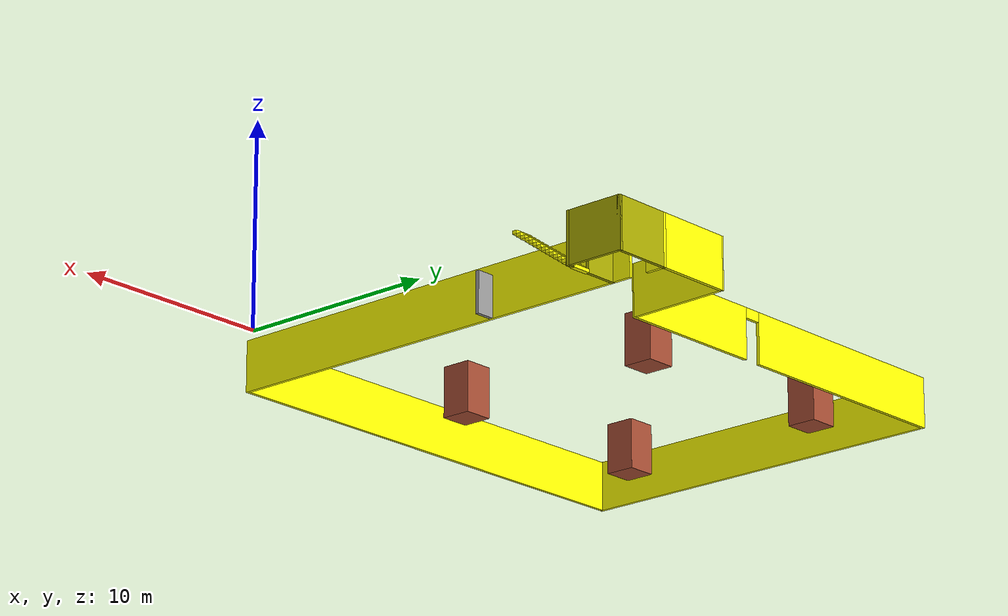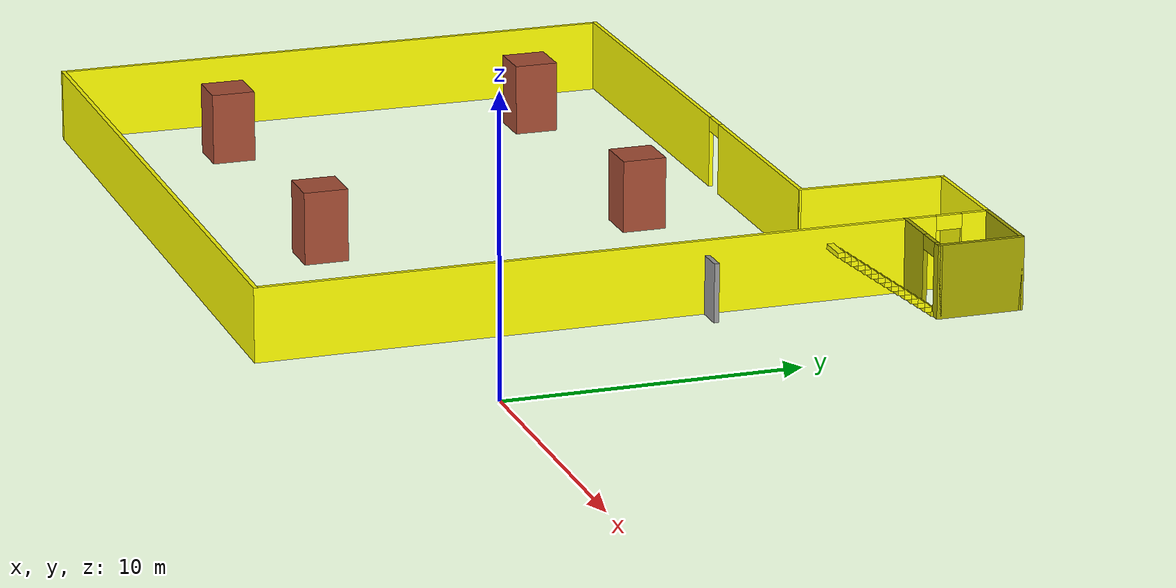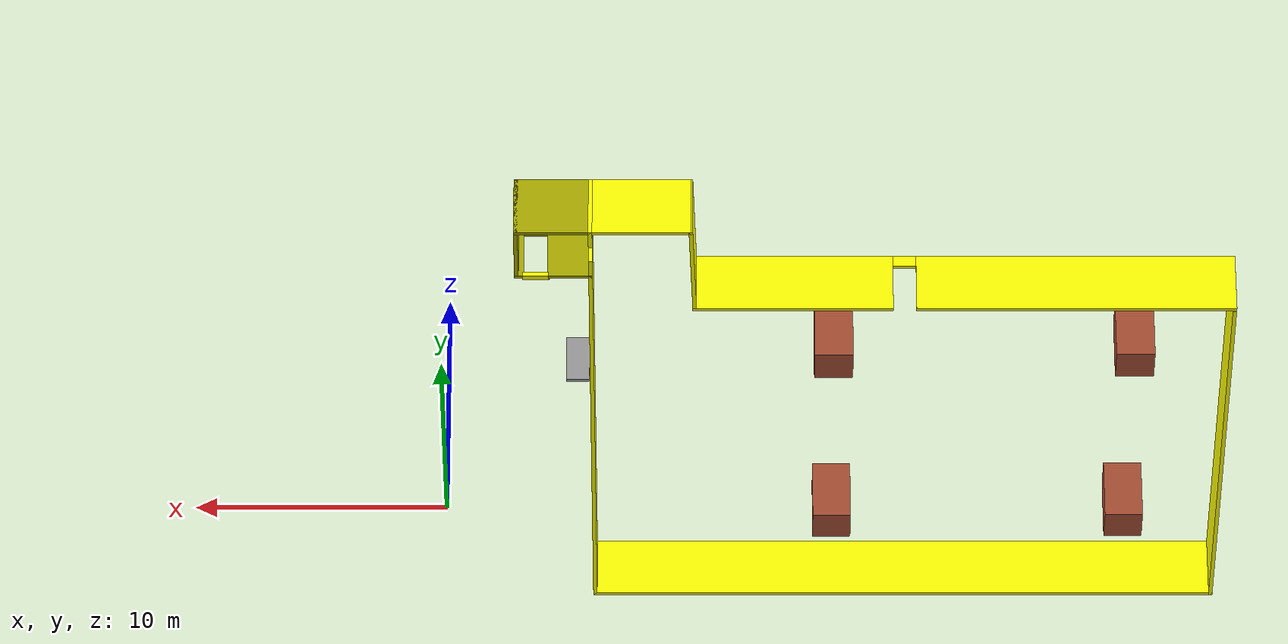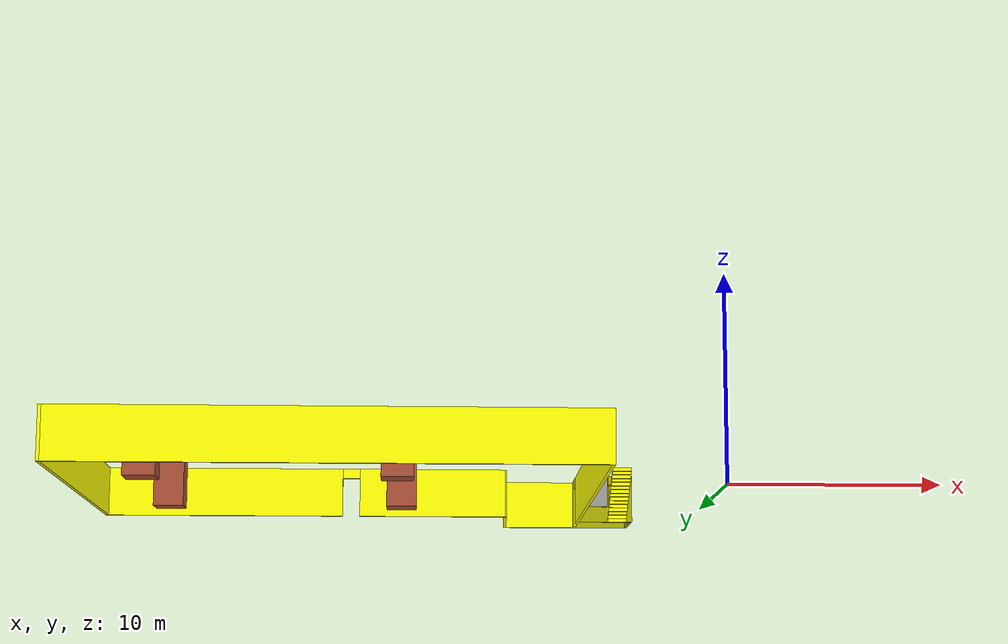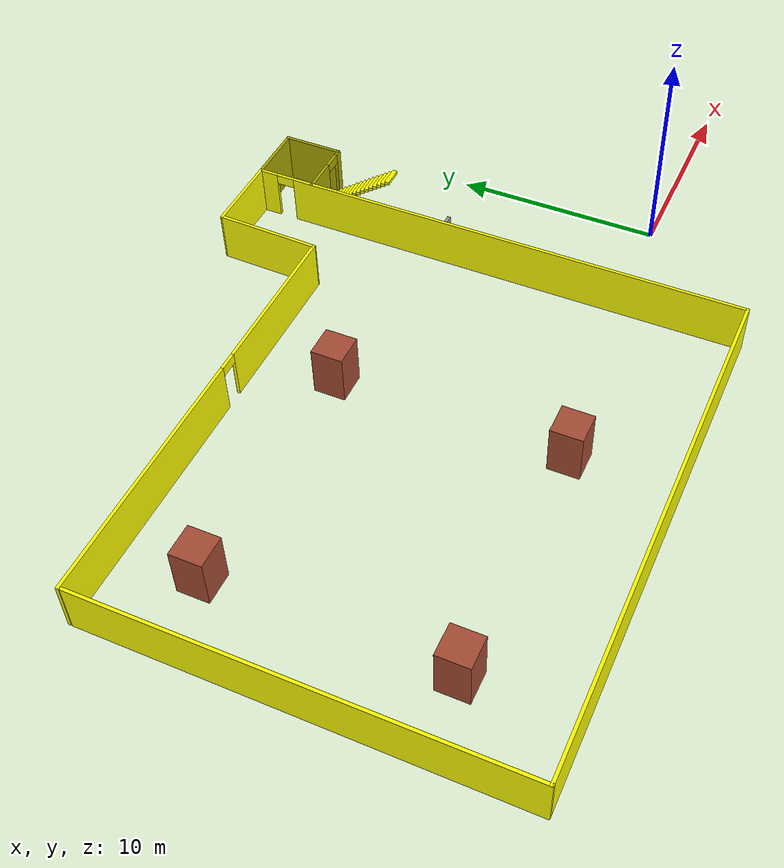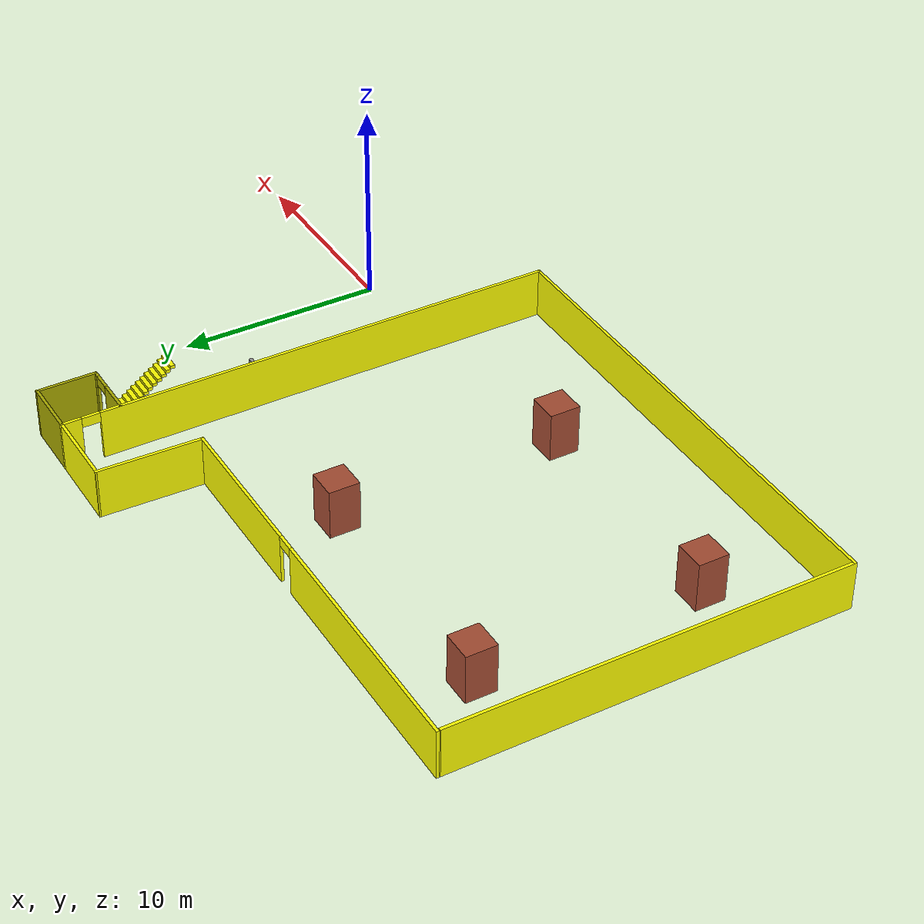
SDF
<?xml version='1.0'?>
<sdf version='1.6'>
  <model name='basement_updated'>
    <pose frame=''>-16.845 6.24811 0 0 -0 0</pose>
    <link name='Door_3'>
      <collision name='Door_3_Collision'>
        <geometry>
          <box>
            <size>0.9 0.17 2</size>
          </box>
        </geometry>
        <pose frame=''>0 0 1 0 -0 0</pose>
      </collision>
      <visual name='Door_3_Visual'>
        <pose frame=''>0 0 1 0 -0 0</pose>
        <geometry>
          <box>
            <size>0.9 0.17 2</size>
          </box>
        </geometry>
        <material>
          <script>
            <uri>file://media/materials/scripts/gazebo.material</uri>
            <name>Gazebo/Grey</name>
          </script>
        </material>
      </visual>
      <pose frame=''>11.5491 2.65287 0 0 -0 0</pose>
    </link>
    <link name='Stairs_0'>
      <visual name='Stairs_0_Visual_0'>
        <pose frame=''>13.1146 9.55196 0.083333 0 -0 0</pose>
        <geometry>
          <box>
            <size>1 0.233333 0.166667</size>
          </box>
        </geometry>
        <material>
          <script>
            <uri>file://media/materials/scripts/gazebo.material</uri>
            <name>Gazebo/Grey</name>
          </script>
          <ambient>1 1 0 1</ambient>
        </material>
      </visual>
      <collision name='Stairs_0_Collision_0'>
        <geometry>
          <box>
            <size>1 0.233333 0.166667</size>
          </box>
        </geometry>
        <pose frame=''>13.1146 9.55196 0.083333 0 -0 0</pose>
      </collision>
      <visual name='Stairs_0_Visual_1'>
        <pose frame=''>13.1146 9.31863 0.25 0 -0 0</pose>
        <geometry>
          <box>
            <size>1 0.233333 0.166667</size>
          </box>
        </geometry>
        <material>
          <script>
            <uri>file://media/materials/scripts/gazebo.material</uri>
            <name>Gazebo/Grey</name>
          </script>
          <ambient>1 1 0 1</ambient>
        </material>
      </visual>
      <collision name='Stairs_0_Collision_1'>
        <geometry>
          <box>
            <size>1 0.233333 0.166667</size>
          </box>
        </geometry>
        <pose frame=''>13.1146 9.31863 0.25 0 -0 0</pose>
      </collision>
      <visual name='Stairs_0_Visual_2'>
        <pose frame=''>13.1146 9.0853 0.416667 0 -0 0</pose>
        <geometry>
          <box>
            <size>1 0.233333 0.166667</size>
          </box>
        </geometry>
        <material>
          <script>
            <uri>file://media/materials/scripts/gazebo.material</uri>
            <name>Gazebo/Grey</name>
          </script>
          <ambient>1 1 0 1</ambient>
        </material>
      </visual>
      <collision name='Stairs_0_Collision_2'>
        <geometry>
          <box>
            <size>1 0.233333 0.166667</size>
          </box>
        </geometry>
        <pose frame=''>13.1146 9.0853 0.416667 0 -0 0</pose>
      </collision>
      <visual name='Stairs_0_Visual_3'>
        <pose frame=''>13.1146 8.85196 0.583333 0 -0 0</pose>
        <geometry>
          <box>
            <size>1 0.233333 0.166667</size>
          </box>
        </geometry>
        <material>
          <script>
            <uri>file://media/materials/scripts/gazebo.material</uri>
            <name>Gazebo/Grey</name>
          </script>
          <ambient>1 1 0 1</ambient>
        </material>
      </visual>
      <collision name='Stairs_0_Collision_3'>
        <geometry>
          <box>
            <size>1 0.233333 0.166667</size>
          </box>
        </geometry>
        <pose frame=''>13.1146 8.85196 0.583333 0 -0 0</pose>
      </collision>
      <visual name='Stairs_0_Visual_4'>
        <pose frame=''>13.1146 8.61863 0.75 0 -0 0</pose>
        <geometry>
          <box>
            <size>1 0.233333 0.166667</size>
          </box>
        </geometry>
        <material>
          <script>
            <uri>file://media/materials/scripts/gazebo.material</uri>
            <name>Gazebo/Grey</name>
          </script>
          <ambient>1 1 0 1</ambient>
        </material>
      </visual>
      <collision name='Stairs_0_Collision_4'>
        <geometry>
          <box>
            <size>1 0.233333 0.166667</size>
          </box>
        </geometry>
        <pose frame=''>13.1146 8.61863 0.75 0 -0 0</pose>
      </collision>
      <visual name='Stairs_0_Visual_5'>
        <pose frame=''>13.1146 8.3853 0.916667 0 -0 0</pose>
        <geometry>
          <box>
            <size>1 0.233333 0.166667</size>
          </box>
        </geometry>
        <material>
          <script>
            <uri>file://media/materials/scripts/gazebo.material</uri>
            <name>Gazebo/Grey</name>
          </script>
          <ambient>1 1 0 1</ambient>
        </material>
      </visual>
      <collision name='Stairs_0_Collision_5'>
        <geometry>
          <box>
            <size>1 0.233333 0.166667</size>
          </box>
        </geometry>
        <pose frame=''>13.1146 8.3853 0.916667 0 -0 0</pose>
      </collision>
      <visual name='Stairs_0_Visual_6'>
        <pose frame=''>13.1146 8.15196 1.08333 0 -0 0</pose>
        <geometry>
          <box>
            <size>1 0.233333 0.166667</size>
          </box>
        </geometry>
        <material>
          <script>
            <uri>file://media/materials/scripts/gazebo.material</uri>
            <name>Gazebo/Grey</name>
          </script>
          <ambient>1 1 0 1</ambient>
        </material>
      </visual>
      <collision name='Stairs_0_Collision_6'>
        <geometry>
          <box>
            <size>1 0.233333 0.166667</size>
          </box>
        </geometry>
        <pose frame=''>13.1146 8.15196 1.08333 0 -0 0</pose>
      </collision>
      <visual name='Stairs_0_Visual_7'>
        <pose frame=''>13.1146 7.91863 1.25 0 -0 0</pose>
        <geometry>
          <box>
            <size>1 0.233333 0.166667</size>
          </box>
        </geometry>
        <material>
          <script>
            <uri>file://media/materials/scripts/gazebo.material</uri>
            <name>Gazebo/Grey</name>
          </script>
          <ambient>1 1 0 1</ambient>
        </material>
      </visual>
      <collision name='Stairs_0_Collision_7'>
        <geometry>
          <box>
            <size>1 0.233333 0.166667</size>
          </box>
        </geometry>
        <pose frame=''>13.1146 7.91863 1.25 0 -0 0</pose>
      </collision>
      <visual name='Stairs_0_Visual_8'>
        <pose frame=''>13.1146 7.6853 1.41667 0 -0 0</pose>
        <geometry>
          <box>
            <size>1 0.233333 0.166667</size>
          </box>
        </geometry>
        <material>
          <script>
            <uri>file://media/materials/scripts/gazebo.material</uri>
            <name>Gazebo/Grey</name>
          </script>
          <ambient>1 1 0 1</ambient>
        </material>
      </visual>
      <collision name='Stairs_0_Collision_8'>
        <geometry>
          <box>
            <size>1 0.233333 0.166667</size>
          </box>
        </geometry>
        <pose frame=''>13.1146 7.6853 1.41667 0 -0 0</pose>
      </collision>
      <visual name='Stairs_0_Visual_9'>
        <pose frame=''>13.1146 7.45196 1.58333 0 -0 0</pose>
        <geometry>
          <box>
            <size>1 0.233333 0.166667</size>
          </box>
        </geometry>
        <material>
          <script>
            <uri>file://media/materials/scripts/gazebo.material</uri>
            <name>Gazebo/Grey</name>
          </script>
          <ambient>1 1 0 1</ambient>
        </material>
      </visual>
      <collision name='Stairs_0_Collision_9'>
        <geometry>
          <box>
            <size>1 0.233333 0.166667</size>
          </box>
        </geometry>
        <pose frame=''>13.1146 7.45196 1.58333 0 -0 0</pose>
      </collision>
      <visual name='Stairs_0_Visual_10'>
        <pose frame=''>13.1146 7.21863 1.75 0 -0 0</pose>
        <geometry>
          <box>
            <size>1 0.233333 0.166667</size>
          </box>
        </geometry>
        <material>
          <script>
            <uri>file://media/materials/scripts/gazebo.material</uri>
            <name>Gazebo/Grey</name>
          </script>
          <ambient>1 1 0 1</ambient>
        </material>
      </visual>
      <collision name='Stairs_0_Collision_10'>
        <geometry>
          <box>
            <size>1 0.233333 0.166667</size>
          </box>
        </geometry>
        <pose frame=''>13.1146 7.21863 1.75 0 -0 0</pose>
      </collision>
      <visual name='Stairs_0_Visual_11'>
        <pose frame=''>13.1146 6.9853 1.91667 0 -0 0</pose>
        <geometry>
          <box>
            <size>1 0.233333 0.166667</size>
          </box>
        </geometry>
        <material>
          <script>
            <uri>file://media/materials/scripts/gazebo.material</uri>
            <name>Gazebo/Grey</name>
          </script>
          <ambient>1 1 0 1</ambient>
        </material>
      </visual>
      <collision name='Stairs_0_Collision_11'>
        <geometry>
          <box>
            <size>1 0.233333 0.166667</size>
          </box>
        </geometry>
        <pose frame=''>13.1146 6.9853 1.91667 0 -0 0</pose>
      </collision>
      <visual name='Stairs_0_Visual_12'>
        <pose frame=''>13.1146 6.75196 2.08333 0 -0 0</pose>
        <geometry>
          <box>
            <size>1 0.233333 0.166667</size>
          </box>
        </geometry>
        <material>
          <script>
            <uri>file://media/materials/scripts/gazebo.material</uri>
            <name>Gazebo/Grey</name>
          </script>
          <ambient>1 1 0 1</ambient>
        </material>
      </visual>
      <collision name='Stairs_0_Collision_12'>
        <geometry>
          <box>
            <size>1 0.233333 0.166667</size>
          </box>
        </geometry>
        <pose frame=''>13.1146 6.75196 2.08333 0 -0 0</pose>
      </collision>
      <visual name='Stairs_0_Visual_13'>
        <pose frame=''>13.1146 6.51863 2.25 0 -0 0</pose>
        <geometry>
          <box>
            <size>1 0.233333 0.166667</size>
          </box>
        </geometry>
        <material>
          <script>
            <uri>file://media/materials/scripts/gazebo.material</uri>
            <name>Gazebo/Grey</name>
          </script>
          <ambient>1 1 0 1</ambient>
        </material>
      </visual>
      <collision name='Stairs_0_Collision_13'>
        <geometry>
          <box>
            <size>1 0.233333 0.166667</size>
          </box>
        </geometry>
        <pose frame=''>13.1146 6.51863 2.25 0 -0 0</pose>
      </collision>
      <visual name='Stairs_0_Visual_14'>
        <pose frame=''>13.1146 6.2853 2.41667 0 -0 0</pose>
        <geometry>
          <box>
            <size>1 0.233333 0.166667</size>
          </box>
        </geometry>
        <material>
          <script>
            <uri>file://media/materials/scripts/gazebo.material</uri>
            <name>Gazebo/Grey</name>
          </script>
          <ambient>1 1 0 1</ambient>
        </material>
      </visual>
      <collision name='Stairs_0_Collision_14'>
        <geometry>
          <box>
            <size>1 0.233333 0.166667</size>
          </box>
        </geometry>
        <pose frame=''>13.1146 6.2853 2.41667 0 -0 0</pose>
      </collision>
    </link>
    <link name='Wall_0'>
      <collision name='Wall_0_Collision'>
        <geometry>
          <box>
            <size>19.8118 0.15 2.5</size>
          </box>
        </geometry>
        <pose frame=''>0 0 1.25 0 -0 0</pose>
      </collision>
      <visual name='Wall_0_Visual'>
        <pose frame=''>0 0 1.25 0 -0 0</pose>
        <geometry>
          <box>
            <size>19.8118 0.15 2.5</size>
          </box>
        </geometry>
        <material>
          <script>
            <uri>file://media/materials/scripts/gazebo.material</uri>
            <name>Gazebo/Grey</name>
          </script>
          <ambient>1 1 0 1</ambient>
        </material>
      </visual>
      <pose frame=''>-13.85 -2.59522 0 0 0 -1.5708</pose>
    </link>
    <link name='Wall_13'>
      <pose frame=''>-3.425 7.42389 0 0 -0 0</pose>
      <visual name='Wall_13_Visual_0'>
        <pose frame=''>-4.32108 0 1.25 0 -0 0</pose>
        <geometry>
          <box>
            <size>12.3578 0.15 2.5</size>
          </box>
        </geometry>
        <material>
          <script>
            <uri>file://media/materials/scripts/gazebo.material</uri>
            <name>Gazebo/Grey</name>
          </script>
          <ambient>1 1 0 1</ambient>
        </material>
      </visual>
      <collision name='Wall_13_Collision_0'>
        <geometry>
          <box>
            <size>12.3578 0.15 2.5</size>
          </box>
        </geometry>
        <pose frame=''>-4.32108 0 1.25 0 -0 0</pose>
      </collision>
      <visual name='Wall_13_Visual_1'>
        <pose frame=''>6.62892 0 1.25 0 -0 0</pose>
        <geometry>
          <box>
            <size>7.74215 0.15 2.5</size>
          </box>
        </geometry>
        <material>
          <script>
            <uri>file://media/materials/scripts/gazebo.material</uri>
            <name>Gazebo/Grey</name>
          </script>
          <ambient>1 1 0 1</ambient>
        </material>
      </visual>
      <collision name='Wall_13_Collision_1'>
        <geometry>
          <box>
            <size>7.74215 0.15 2.5</size>
          </box>
        </geometry>
        <pose frame=''>6.62892 0 1.25 0 -0 0</pose>
      </collision>
      <visual name='Wall_13_Visual_2'>
        <pose frame=''>2.30785 0 2.25 0 -0 0</pose>
        <geometry>
          <box>
            <size>0.9 0.15 0.5</size>
          </box>
        </geometry>
        <material>
          <script>
            <uri>file://media/materials/scripts/gazebo.material</uri>
            <name>Gazebo/Grey</name>
          </script>
          <ambient>1 1 0 1</ambient>
        </material>
      </visual>
      <collision name='Wall_13_Collision_2'>
        <geometry>
          <box>
            <size>0.9 0.15 0.5</size>
          </box>
        </geometry>
        <pose frame=''>2.30785 0 2.25 0 -0 0</pose>
      </collision>
    </link>
    <link name='Wall_17'>
      <pose frame=''>11 -0.001107 0 0 -0 1.5708</pose>
      <visual name='Wall_17_Visual_0'>
        <pose frame=''>-0.949636 0 1.25 0 -0 0</pose>
        <geometry>
          <box>
            <size>23.1007 0.15 2.5</size>
          </box>
        </geometry>
        <material>
          <script>
            <uri>file://media/materials/scripts/gazebo.material</uri>
            <name>Gazebo/Grey</name>
          </script>
          <ambient>1 1 0 1</ambient>
        </material>
      </visual>
      <collision name='Wall_17_Collision_0'>
        <geometry>
          <box>
            <size>23.1007 0.15 2.5</size>
          </box>
        </geometry>
        <pose frame=''>-0.949636 0 1.25 0 -0 0</pose>
      </collision>
      <visual name='Wall_17_Visual_1'>
        <pose frame=''>12.0004 0 1.25 0 -0 0</pose>
        <geometry>
          <box>
            <size>0.999273 0.15 2.5</size>
          </box>
        </geometry>
        <material>
          <script>
            <uri>file://media/materials/scripts/gazebo.material</uri>
            <name>Gazebo/Grey</name>
          </script>
          <ambient>1 1 0 1</ambient>
        </material>
      </visual>
      <collision name='Wall_17_Collision_1'>
        <geometry>
          <box>
            <size>0.999273 0.15 2.5</size>
          </box>
        </geometry>
        <pose frame=''>12.0004 0 1.25 0 -0 0</pose>
      </collision>
      <visual name='Wall_17_Visual_2'>
        <pose frame=''>11.0507 0 2.25 0 -0 0</pose>
        <geometry>
          <box>
            <size>0.9 0.15 0.5</size>
          </box>
        </geometry>
        <material>
          <script>
            <uri>file://media/materials/scripts/gazebo.material</uri>
            <name>Gazebo/Grey</name>
          </script>
          <ambient>1 1 0 1</ambient>
        </material>
      </visual>
      <collision name='Wall_17_Collision_2'>
        <geometry>
          <box>
            <size>0.9 0.15 0.5</size>
          </box>
        </geometry>
        <pose frame=''>11.0507 0 2.25 0 -0 0</pose>
      </collision>
    </link>
    <link name='Wall_20'>
      <collision name='Wall_20_Collision'>
        <geometry>
          <box>
            <size>4 0.15 2.5</size>
          </box>
        </geometry>
        <pose frame=''>0 0 1.25 0 -0 0</pose>
      </collision>
      <visual name='Wall_20_Visual'>
        <pose frame=''>0 0 1.25 0 -0 0</pose>
        <geometry>
          <box>
            <size>4 0.15 2.5</size>
          </box>
        </geometry>
        <material>
          <script>
            <uri>file://media/materials/scripts/gazebo.material</uri>
            <name>Gazebo/Grey</name>
          </script>
          <ambient>1 1 0 1</ambient>
        </material>
      </visual>
      <pose frame=''>9.075 12.4239 0 0 -0 3.14159</pose>
    </link>
    <link name='Wall_24'>
      <collision name='Wall_24_Collision'>
        <geometry>
          <box>
            <size>5.15225 0.15 2.5</size>
          </box>
        </geometry>
        <pose frame=''>0 0 1.25 0 -0 0</pose>
      </collision>
      <visual name='Wall_24_Visual'>
        <pose frame=''>0 0 1.25 0 -0 0</pose>
        <geometry>
          <box>
            <size>5.15225 0.15 2.5</size>
          </box>
        </geometry>
        <material>
          <script>
            <uri>file://media/materials/scripts/gazebo.material</uri>
            <name>Gazebo/Grey</name>
          </script>
          <ambient>1 1 0 1</ambient>
        </material>
      </visual>
      <pose frame=''>7.075 9.92389 0 0 -0 1.5408</pose>
    </link>
    <link name='Wall_26'>
      <collision name='Wall_26_Collision'>
        <geometry>
          <box>
            <size>1.51 1.5 2.5</size>
          </box>
        </geometry>
        <pose frame=''>0 0 1.25 0 -0 0</pose>
      </collision>
      <visual name='Wall_26_Visual'>
        <pose frame=''>0 0 1.25 0 -0 0</pose>
        <geometry>
          <box>
            <size>1.51 1.5 2.5</size>
          </box>
        </geometry>
        <material>
          <script>
            <uri>file://media/materials/scripts/gazebo.material</uri>
            <name>Gazebo/Bricks</name>
          </script>
          <ambient>1 1 1 1</ambient>
        </material>
      </visual>
      <pose frame=''>-10.1524 3.68806 0 0 -0 1.5708</pose>
    </link>
    <link name='Wall_28'>
      <collision name='Wall_28_Collision'>
        <geometry>
          <box>
            <size>1.51 1.5 2.5</size>
          </box>
        </geometry>
        <pose frame=''>0 0 1.25 0 -0 0</pose>
      </collision>
      <visual name='Wall_28_Visual'>
        <pose frame=''>0 0 1.25 0 -0 0</pose>
        <geometry>
          <box>
            <size>1.51 1.5 2.5</size>
          </box>
        </geometry>
        <material>
          <script>
            <uri>file://media/materials/scripts/gazebo.material</uri>
            <name>Gazebo/Bricks</name>
          </script>
          <ambient>1 1 1 1</ambient>
        </material>
      </visual>
      <pose frame=''>1.58088 3.61659 0 0 0 -1.5708</pose>
    </link>
    <link name='Wall_30'>
      <collision name='Wall_30_Collision'>
        <geometry>
          <box>
            <size>1.51 1.5 2.5</size>
          </box>
        </geometry>
        <pose frame=''>0 0 1.25 0 -0 0</pose>
      </collision>
      <visual name='Wall_30_Visual'>
        <pose frame=''>0 0 1.25 0 -0 0</pose>
        <geometry>
          <box>
            <size>1.51 1.5 2.5</size>
          </box>
        </geometry>
        <material>
          <script>
            <uri>file://media/materials/scripts/gazebo.material</uri>
            <name>Gazebo/Bricks</name>
          </script>
          <ambient>1 1 1 1</ambient>
        </material>
      </visual>
      <pose frame=''>-10.1281 -7.46052 0 0 0 -1.5708</pose>
    </link>
    <link name='Wall_33'>
      <collision name='Wall_33_Collision'>
        <geometry>
          <box>
            <size>1.51 1.5 2.5</size>
          </box>
        </geometry>
        <pose frame=''>0 0 1.25 0 -0 0</pose>
      </collision>
      <visual name='Wall_33_Visual'>
        <pose frame=''>0 0 1.25 0 -0 0</pose>
        <geometry>
          <box>
            <size>1.51 1.5 2.5</size>
          </box>
        </geometry>
        <material>
          <script>
            <uri>file://media/materials/scripts/gazebo.material</uri>
            <name>Gazebo/Bricks</name>
          </script>
          <ambient>1 1 1 1</ambient>
        </material>
      </visual>
      <pose frame=''>1.5253 -7.5316 0 0 -0 1.5708</pose>
    </link>
    <link name='Wall_35'>
      <collision name='Wall_35_Collision'>
        <geometry>
          <box>
            <size>3 0.15 2.5</size>
          </box>
        </geometry>
        <pose frame=''>0 0 1.25 0 -0 0</pose>
      </collision>
      <visual name='Wall_35_Visual'>
        <pose frame=''>0 0 1.25 0 -0 0</pose>
        <geometry>
          <box>
            <size>3 0.15 2.5</size>
          </box>
        </geometry>
        <material>
          <script>
            <uri>file://media/materials/scripts/gazebo.material</uri>
            <name>Gazebo/Grey</name>
          </script>
          <ambient>0.666667 0.666667 0 1</ambient>
        </material>
      </visual>
      <pose frame=''>12.425 12.4239 0 0 -0 0</pose>
    </link>
    <link name='Wall_37'>
      <collision name='Wall_37_Collision'>
        <geometry>
          <box>
            <size>3 0.15 2.5</size>
          </box>
        </geometry>
        <pose frame=''>0 0 1.25 0 -0 0</pose>
      </collision>
      <visual name='Wall_37_Visual'>
        <pose frame=''>0 0 1.25 0 -0 0</pose>
        <geometry>
          <box>
            <size>3 0.15 2.5</size>
          </box>
        </geometry>
        <material>
          <script>
            <uri>file://media/materials/scripts/gazebo.material</uri>
            <name>Gazebo/Grey</name>
          </script>
          <ambient>0.666667 0.666667 0 1</ambient>
        </material>
      </visual>
      <pose frame=''>13.85 10.9989 0 0 0 -1.5708</pose>
    </link>
    <link name='Wall_39'>
      <pose frame=''>12.425 9.57389 0 0 -0 3.14159</pose>
      <visual name='Wall_39_Visual_0'>
        <pose frame=''>-1.31981 0 1.25 0 -0 0</pose>
        <geometry>
          <box>
            <size>0.360381 0.15 2.5</size>
          </box>
        </geometry>
        <material>
          <script>
            <uri>file://media/materials/scripts/gazebo.material</uri>
            <name>Gazebo/Grey</name>
          </script>
          <ambient>0.666667 0.666667 0 1</ambient>
        </material>
      </visual>
      <collision name='Wall_39_Collision_0'>
        <geometry>
          <box>
            <size>0.360381 0.15 2.5</size>
          </box>
        </geometry>
        <pose frame=''>-1.31981 0 1.25 0 -0 0</pose>
      </collision>
      <visual name='Wall_39_Visual_1'>
        <pose frame=''>0.630191 0 1.25 0 -0 0</pose>
        <geometry>
          <box>
            <size>1.73962 0.15 2.5</size>
          </box>
        </geometry>
        <material>
          <script>
            <uri>file://media/materials/scripts/gazebo.material</uri>
            <name>Gazebo/Grey</name>
          </script>
          <ambient>0.666667 0.666667 0 1</ambient>
        </material>
      </visual>
      <collision name='Wall_39_Collision_1'>
        <geometry>
          <box>
            <size>1.73962 0.15 2.5</size>
          </box>
        </geometry>
        <pose frame=''>0.630191 0 1.25 0 -0 0</pose>
      </collision>
      <visual name='Wall_39_Visual_2'>
        <pose frame=''>-0.689619 0 2.25 0 -0 0</pose>
        <geometry>
          <box>
            <size>0.9 0.15 0.5</size>
          </box>
        </geometry>
        <material>
          <script>
            <uri>file://media/materials/scripts/gazebo.material</uri>
            <name>Gazebo/Grey</name>
          </script>
          <ambient>0.666667 0.666667 0 1</ambient>
        </material>
      </visual>
      <collision name='Wall_39_Collision_2'>
        <geometry>
          <box>
            <size>0.9 0.15 0.5</size>
          </box>
        </geometry>
        <pose frame=''>-0.689619 0 2.25 0 -0 0</pose>
      </collision>
    </link>
    <link name='Wall_8'>
      <collision name='Wall_8_Collision'>
        <geometry>
          <box>
            <size>25 0.15 2.5</size>
          </box>
        </geometry>
        <pose frame=''>0 0 1.25 0 -0 0</pose>
      </collision>
      <visual name='Wall_8_Visual'>
        <pose frame=''>0 0 1.25 0 -0 0</pose>
        <geometry>
          <box>
            <size>25 0.15 2.5</size>
          </box>
        </geometry>
        <material>
          <script>
            <uri>file://media/materials/scripts/gazebo.material</uri>
            <name>Gazebo/Grey</name>
          </script>
          <ambient>1 1 0 1</ambient>
        </material>
      </visual>
      <pose frame=''>-1.425 -12.4261 0 0 -0 0</pose>
    </link>
    <static>1</static>
  </model>
</sdf>
